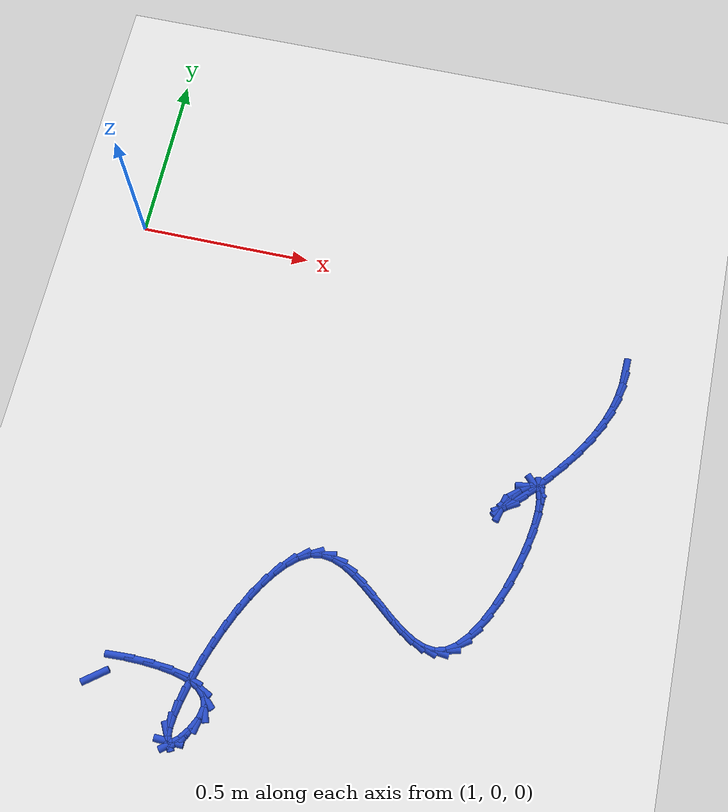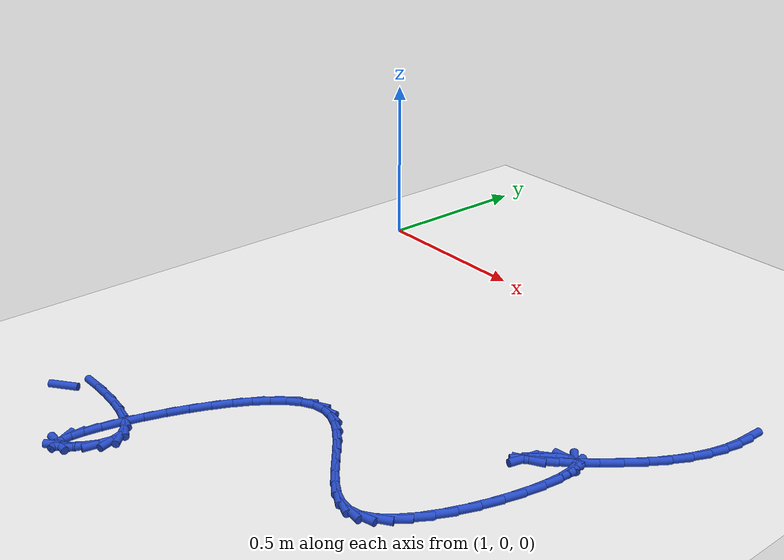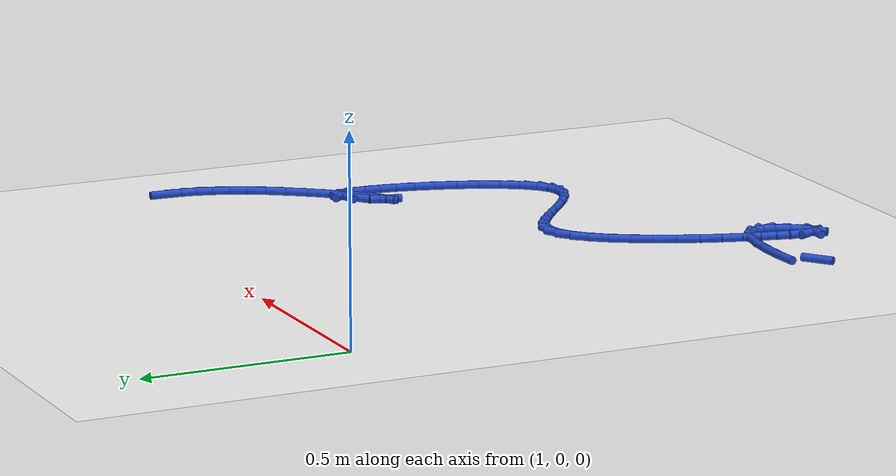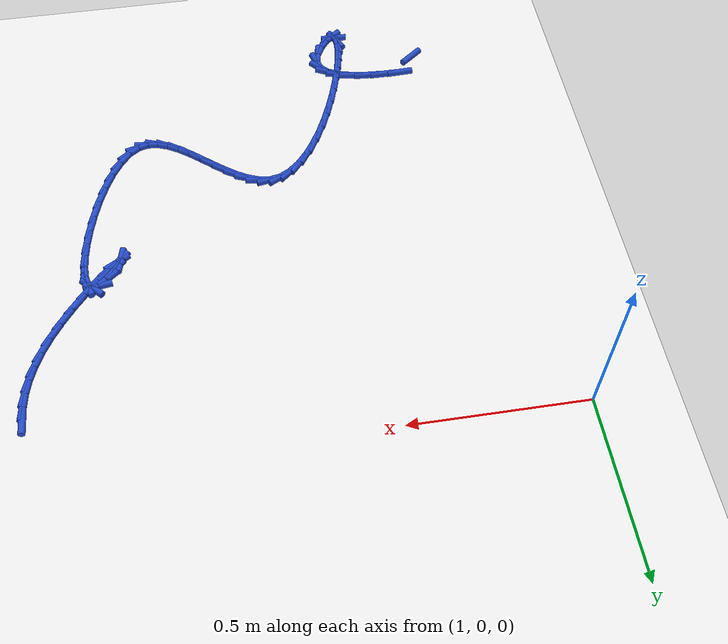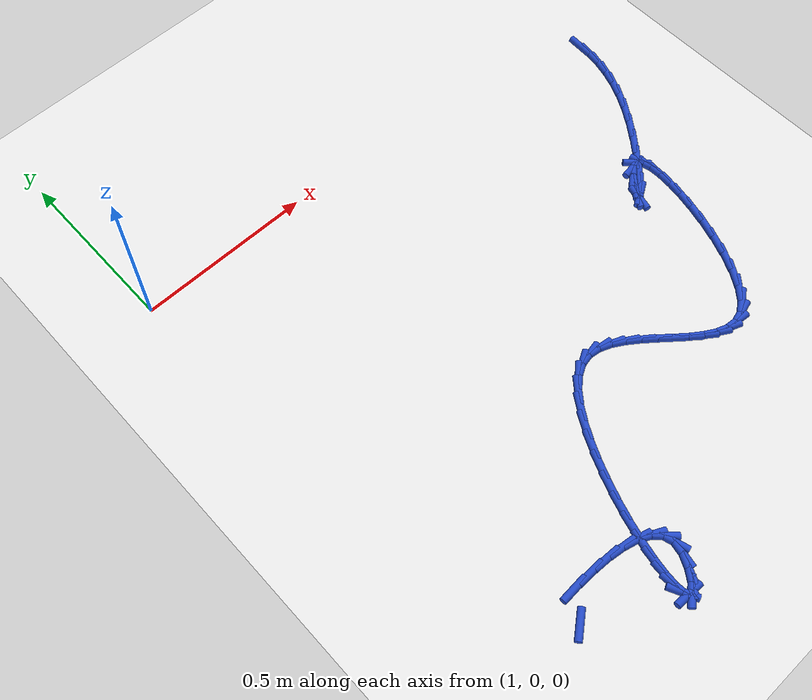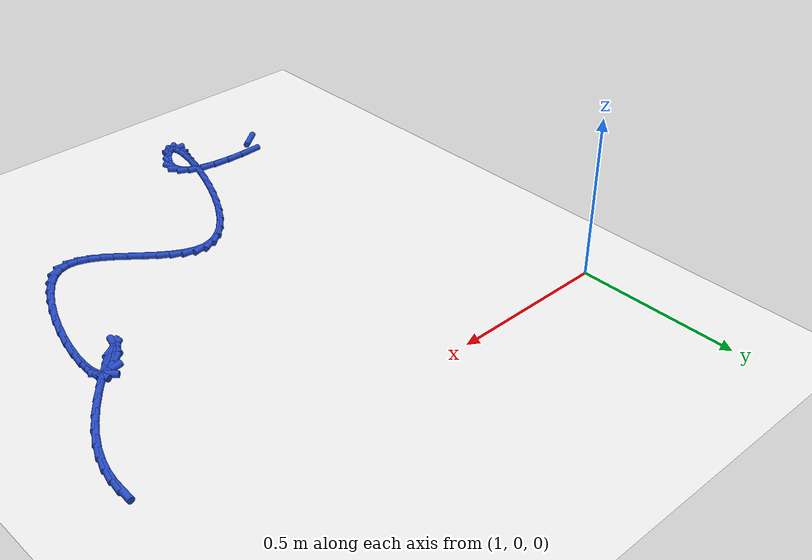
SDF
<sdf version="1.6">
 <world name="default">
  <model name="ground_plane">
   <static>1</static>
   <link name="link">
    <collision name="collision">
     <geometry><plane><normal>0 0 1</normal><size>100 100</size></plane></geometry>
     <surface><friction><ode><mu>100</mu><mu2>50</mu2></ode></friction></surface>
    </collision>
    <visual name="visual">
     <cast_shadows>0</cast_shadows>
     <geometry><plane><normal>0 0 1</normal><size>100 100</size></plane></geometry>
     <material>
      <script><uri>file://media/materials/scripts/gazebo.material</uri><name>Gazebo/WhiteGlow</name></script>
     </material>
    </visual>
   </link>
  </model>
  <model name="line">
   <link name="link_141">
    <pose>2.475047512326622 -0.15665259441816104 0.01 0 1.57 1.5263187064248123</pose>
    <collision name="collision">
     <geometry><cylinder><radius>0.01</radius><length>0.08</length></cylinder></geometry>
    </collision>
    <visual name="visual">
     <material>
      <script><name>Gazebo/Blue</name><uri>file://media/materials/scripts/gazebo.material</uri></script>
     </material>
     <geometry><cylinder><radius>0.01</radius><length>0.08</length></cylinder></geometry>
    </visual>
   </link>
   <link name="link_142">
    <pose>2.4733449842758852 -0.19490565760300038 0.01 0 1.57 1.4175095418851102</pose>
    <collision name="collision">
     <geometry><cylinder><radius>0.01</radius><length>0.08</length></cylinder></geometry>
    </collision>
    <visual name="visual">
     <material>
      <script><name>Gazebo/Blue</name><uri>file://media/materials/scripts/gazebo.material</uri></script>
     </material>
     <geometry><cylinder><radius>0.01</radius><length>0.08</length></cylinder></geometry>
    </visual>
   </link>
   <link name="link_143">
    <pose>2.467241640386339 -0.23440981804726124 0.01 0 1.57 1.3131827814348553</pose>
    <collision name="collision">
     <geometry><cylinder><radius>0.01</radius><length>0.08</length></cylinder></geometry>
    </collision>
    <visual name="visual">
     <material>
      <script><name>Gazebo/Blue</name><uri>file://media/materials/scripts/gazebo.material</uri></script>
     </material>
     <geometry><cylinder><radius>0.01</radius><length>0.08</length></cylinder></geometry>
    </visual>
   </link>
   <link name="link_144">
    <pose>2.4565036886007485 -0.27516603556299446 0.01 0 1.57 1.2150993240881174</pose>
    <collision name="collision">
     <geometry><cylinder><radius>0.01</radius><length>0.08</length></cylinder></geometry>
    </collision>
    <visual name="visual">
     <material>
      <script><name>Gazebo/Blue</name><uri>file://media/materials/scripts/gazebo.material</uri></script>
     </material>
     <geometry><cylinder><radius>0.01</radius><length>0.08</length></cylinder></geometry>
    </visual>
   </link>
   <link name="link_145">
    <pose>2.440897336861878 -0.3171752699622508 0.01 0 1.57 1.1243627041808386</pose>
    <collision name="collision">
     <geometry><cylinder><radius>0.01</radius><length>0.08</length></cylinder></geometry>
    </collision>
    <visual name="visual">
     <material>
      <script><name>Gazebo/Blue</name><uri>file://media/materials/scripts/gazebo.material</uri></script>
     </material>
     <geometry><cylinder><radius>0.01</radius><length>0.08</length></cylinder></geometry>
    </visual>
   </link>
   <link name="link_146">
    <pose>2.420188793112492 -0.36043848105708126 0.01 0 1.57 1.0414556358109461</pose>
    <collision name="collision">
     <geometry><cylinder><radius>0.01</radius><length>0.08</length></cylinder></geometry>
    </collision>
    <visual name="visual">
     <material>
      <script><name>Gazebo/Blue</name><uri>file://media/materials/scripts/gazebo.material</uri></script>
     </material>
     <geometry><cylinder><radius>0.01</radius><length>0.08</length></cylinder></geometry>
    </visual>
   </link>
   <link name="link_147">
    <pose>2.3941442652953544 -0.4049566286595365 0.01 0 1.57 0.967882478775968</pose>
    <collision name="collision">
     <geometry><cylinder><radius>0.01</radius><length>0.08</length></cylinder></geometry>
    </collision>
    <visual name="visual">
     <material>
      <script><name>Gazebo/Blue</name><uri>file://media/materials/scripts/gazebo.material</uri></script>
     </material>
     <geometry><cylinder><radius>0.01</radius><length>0.08</length></cylinder></geometry>
    </visual>
   </link>
   <link name="link_148">
    <pose>2.3627558357569285 -0.45055131193540315 0.01 0 1.57 0.911548241323808</pose>
    <collision name="collision">
     <geometry><cylinder><radius>0.01</radius><length>0.08</length></cylinder></geometry>
    </collision>
    <visual name="visual">
     <material>
      <script><name>Gazebo/Blue</name><uri>file://media/materials/scripts/gazebo.material</uri></script>
     </material>
     <geometry><cylinder><radius>0.01</radius><length>0.08</length></cylinder></geometry>
    </visual>
   </link>
   <link name="link_149">
    <pose>2.3278689219816266 -0.4955724476347228 0.01 0 1.57 0.8681431768859247</pose>
    <collision name="collision">
     <geometry><cylinder><radius>0.01</radius><length>0.08</length></cylinder></geometry>
    </collision>
    <visual name="visual">
     <material>
      <script><name>Gazebo/Blue</name><uri>file://media/materials/scripts/gazebo.material</uri></script>
     </material>
     <geometry><cylinder><radius>0.01</radius><length>0.08</length></cylinder></geometry>
    </visual>
   </link>
   <link name="link_150">
    <pose>2.292237496188603 -0.5376484942027351 0.01 0 1.57 0.8299718423669135</pose>
    <collision name="collision">
     <geometry><cylinder><radius>0.01</radius><length>0.08</length></cylinder></geometry>
    </collision>
    <visual name="visual">
     <material>
      <script><name>Gazebo/Blue</name><uri>file://media/materials/scripts/gazebo.material</uri></script>
     </material>
     <geometry><cylinder><radius>0.01</radius><length>0.08</length></cylinder></geometry>
    </visual>
   </link>
   <link name="link_151">
    <pose>2.2586217768638552 -0.5744029500961213 0.01 0 1.57 0.7891387966652418</pose>
    <collision name="collision">
     <geometry><cylinder><radius>0.01</radius><length>0.08</length></cylinder></geometry>
    </collision>
    <visual name="visual">
     <material>
      <script><name>Gazebo/Blue</name><uri>file://media/materials/scripts/gazebo.material</uri></script>
     </material>
     <geometry><cylinder><radius>0.01</radius><length>0.08</length></cylinder></geometry>
    </visual>
   </link>
   <link name="link_152">
    <pose>2.2297819824933836 -0.6034593137715615 0.01 0 1.57 0.7278260920317292</pose>
    <collision name="collision">
     <geometry><cylinder><radius>0.01</radius><length>0.08</length></cylinder></geometry>
    </collision>
    <visual name="visual">
     <material>
      <script><name>Gazebo/Blue</name><uri>file://media/materials/scripts/gazebo.material</uri></script>
     </material>
     <geometry><cylinder><radius>0.01</radius><length>0.08</length></cylinder></geometry>
    </visual>
   </link>
   <link name="link_153">
    <pose>2.2084783315631853 -0.6224410836857381 0.01 0 1.57 0.5354818273584318</pose>
    <collision name="collision">
     <geometry><cylinder><radius>0.01</radius><length>0.08</length></cylinder></geometry>
    </collision>
    <visual name="visual">
     <material>
      <script><name>Gazebo/Blue</name><uri>file://media/materials/scripts/gazebo.material</uri></script>
     </material>
     <geometry><cylinder><radius>0.01</radius><length>0.08</length></cylinder></geometry>
    </visual>
   </link>
   <link name="link_154">
    <pose>2.197471042559258 -0.6289717582953313 0.01 0 1.57 1.328648676354437</pose>
    <collision name="collision">
     <geometry><cylinder><radius>0.01</radius><length>0.08</length></cylinder></geometry>
    </collision>
    <visual name="visual">
     <material>
      <script><name>Gazebo/Blue</name><uri>file://media/materials/scripts/gazebo.material</uri></script>
     </material>
     <geometry><cylinder><radius>0.01</radius><length>0.08</length></cylinder></geometry>
    </visual>
   </link>
   <link name="link_155">
    <pose>2.199520333967601 -0.6206748360570217 0.01 0 1.57 0.960197961904093</pose>
    <collision name="collision">
     <geometry><cylinder><radius>0.01</radius><length>0.08</length></cylinder></geometry>
    </collision>
    <visual name="visual">
     <material>
      <script><name>Gazebo/Blue</name><uri>file://media/materials/scripts/gazebo.material</uri></script>
     </material>
     <geometry><cylinder><radius>0.01</radius><length>0.08</length></cylinder></geometry>
    </visual>
   </link>
   <link name="link_156">
    <pose>2.216220396651971 -0.5968111227341927 0.01 0 1.57 0.8584229246016675</pose>
    <collision name="collision">
     <geometry><cylinder><radius>0.01</radius><length>0.08</length></cylinder></geometry>
    </collision>
    <visual name="visual">
     <material>
      <script><name>Gazebo/Blue</name><uri>file://media/materials/scripts/gazebo.material</uri></script>
     </material>
     <geometry><cylinder><radius>0.01</radius><length>0.08</length></cylinder></geometry>
    </visual>
   </link>
   <link name="link_157">
    <pose>2.2409482010078223 -0.5681798429551728 0.01 0 1.57 0.6719790796865251</pose>
    <collision name="collision">
     <geometry><cylinder><radius>0.01</radius><length>0.08</length></cylinder></geometry>
    </collision>
    <visual name="visual">
     <material>
      <script><name>Gazebo/Blue</name><uri>file://media/materials/scripts/gazebo.material</uri></script>
     </material>
     <geometry><cylinder><radius>0.01</radius><length>0.08</length></cylinder></geometry>
    </visual>
   </link>
   <link name="link_158">
    <pose>2.2639250574596113 -0.5499022012439558 0.01 0 1.57 0.13818609768132062</pose>
    <collision name="collision">
     <geometry><cylinder><radius>0.01</radius><length>0.08</length></cylinder></geometry>
    </collision>
    <visual name="visual">
     <material>
      <script><name>Gazebo/Blue</name><uri>file://media/materials/scripts/gazebo.material</uri></script>
     </material>
     <geometry><cylinder><radius>0.01</radius><length>0.08</length></cylinder></geometry>
    </visual>
   </link>
   <link name="link_159">
    <pose>2.2810215201523922 -0.5475245544421465 0.01 0 1.57 -0.7936894795982131</pose>
    <collision name="collision">
     <geometry><cylinder><radius>0.01</radius><length>0.08</length></cylinder></geometry>
    </collision>
    <visual name="visual">
     <material>
      <script><name>Gazebo/Blue</name><uri>file://media/materials/scripts/gazebo.material</uri></script>
     </material>
     <geometry><cylinder><radius>0.01</radius><length>0.08</length></cylinder></geometry>
    </visual>
   </link>
   <link name="link_160">
    <pose>2.292484378838618 -0.5591790911557518 0.01 0 1.57 -1.3145777046535314</pose>
    <collision name="collision">
     <geometry><cylinder><radius>0.01</radius><length>0.08</length></cylinder></geometry>
    </collision>
    <visual name="visual">
     <material>
      <script><name>Gazebo/Blue</name><uri>file://media/materials/scripts/gazebo.material</uri></script>
     </material>
     <geometry><cylinder><radius>0.01</radius><length>0.08</length></cylinder></geometry>
    </visual>
   </link>
   <link name="link_161">
    <pose>2.298673976662515 -0.5828056191352192 0.01 0 1.57 -1.5327483947507063</pose>
    <collision name="collision">
     <geometry><cylinder><radius>0.01</radius><length>0.08</length></cylinder></geometry>
    </collision>
    <visual name="visual">
     <material>
      <script><name>Gazebo/Blue</name><uri>file://media/materials/scripts/gazebo.material</uri></script>
     </material>
     <geometry><cylinder><radius>0.01</radius><length>0.08</length></cylinder></geometry>
    </visual>
   </link>
   <link name="link_162">
    <pose>2.2999506567683037 -0.6163439461309956 0.01 0 1.57 1.491813844682639</pose>
    <collision name="collision">
     <geometry><cylinder><radius>0.01</radius><length>0.08</length></cylinder></geometry>
    </collision>
    <visual name="visual">
     <material>
      <script><name>Gazebo/Blue</name><uri>file://media/materials/scripts/gazebo.material</uri></script>
     </material>
     <geometry><cylinder><radius>0.01</radius><length>0.08</length></cylinder></geometry>
    </visual>
   </link>
   <link name="link_163">
    <pose>2.2966747623002077 -0.6577338798935284 0.01 0 1.57 1.413813161024625</pose>
    <collision name="collision">
     <geometry><cylinder><radius>0.01</radius><length>0.08</length></cylinder></geometry>
    </collision>
    <visual name="visual">
     <material>
      <script><name>Gazebo/Blue</name><uri>file://media/materials/scripts/gazebo.material</uri></script>
     </material>
     <geometry><cylinder><radius>0.01</radius><length>0.08</length></cylinder></geometry>
    </visual>
   </link>
   <link name="link_164">
    <pose>2.2892066364024513 -0.7049152281732647 0.01 0 1.57 1.3523873851237296</pose>
    <collision name="collision">
     <geometry><cylinder><radius>0.01</radius><length>0.08</length></cylinder></geometry>
    </collision>
    <visual name="visual">
     <material>
      <script><name>Gazebo/Blue</name><uri>file://media/materials/scripts/gazebo.material</uri></script>
     </material>
     <geometry><cylinder><radius>0.01</radius><length>0.08</length></cylinder></geometry>
    </visual>
   </link>
   <link name="link_165">
    <pose>2.2779066222192568 -0.7558277987206512 0.01 0 1.57 1.29693869101213</pose>
    <collision name="collision">
     <geometry><cylinder><radius>0.01</radius><length>0.08</length></cylinder></geometry>
    </collision>
    <visual name="visual">
     <material>
      <script><name>Gazebo/Blue</name><uri>file://media/materials/scripts/gazebo.material</uri></script>
     </material>
     <geometry><cylinder><radius>0.01</radius><length>0.08</length></cylinder></geometry>
    </visual>
   </link>
   <link name="link_166">
    <pose>2.2631350628948463 -0.8084113992861359 0.01 0 1.57 1.2407128516943722</pose>
    <collision name="collision">
     <geometry><cylinder><radius>0.01</radius><length>0.08</length></cylinder></geometry>
    </collision>
    <visual name="visual">
     <material>
      <script><name>Gazebo/Blue</name><uri>file://media/materials/scripts/gazebo.material</uri></script>
     </material>
     <geometry><cylinder><radius>0.01</radius><length>0.08</length></cylinder></geometry>
    </visual>
   </link>
   <link name="link_167">
    <pose>2.245252301573444 -0.8606058376201653 0.01 0 1.57 1.1776077804700003</pose>
    <collision name="collision">
     <geometry><cylinder><radius>0.01</radius><length>0.08</length></cylinder></geometry>
    </collision>
    <visual name="visual">
     <material>
      <script><name>Gazebo/Blue</name><uri>file://media/materials/scripts/gazebo.material</uri></script>
     </material>
     <geometry><cylinder><radius>0.01</radius><length>0.08</length></cylinder></geometry>
    </visual>
   </link>
   <link name="link_168">
    <pose>2.2246186813992725 -0.910350921473187 0.01 0 1.57 1.0999878803427132</pose>
    <collision name="collision">
     <geometry><cylinder><radius>0.01</radius><length>0.08</length></cylinder></geometry>
    </collision>
    <visual name="visual">
     <material>
      <script><name>Gazebo/Blue</name><uri>file://media/materials/scripts/gazebo.material</uri></script>
     </material>
     <geometry><cylinder><radius>0.01</radius><length>0.08</length></cylinder></geometry>
    </visual>
   </link>
   <link name="link_169">
    <pose>2.201594545516556 -0.9555864585956466 0.01 0 1.57 0.9958489264679008</pose>
    <collision name="collision">
     <geometry><cylinder><radius>0.01</radius><length>0.08</length></cylinder></geometry>
    </collision>
    <visual name="visual">
     <material>
      <script><name>Gazebo/Blue</name><uri>file://media/materials/scripts/gazebo.material</uri></script>
     </material>
     <geometry><cylinder><radius>0.01</radius><length>0.08</length></cylinder></geometry>
    </visual>
   </link>
   <link name="link_170">
    <pose>2.1765402370695157 -0.9942522567379943 0.01 0 1.57 0.8436782622565558</pose>
    <collision name="collision">
     <geometry><cylinder><radius>0.01</radius><length>0.08</length></cylinder></geometry>
    </collision>
    <visual name="visual">
     <material>
      <script><name>Gazebo/Blue</name><uri>file://media/materials/scripts/gazebo.material</uri></script>
     </material>
     <geometry><cylinder><radius>0.01</radius><length>0.08</length></cylinder></geometry>
    </visual>
   </link>
   <link name="link_171">
    <pose>2.1498160992023747 -1.0242881236506753 0.01 0 1.57 0.6040869255987035</pose>
    <collision name="collision">
     <geometry><cylinder><radius>0.01</radius><length>0.08</length></cylinder></geometry>
    </collision>
    <visual name="visual">
     <material>
      <script><name>Gazebo/Blue</name><uri>file://media/materials/scripts/gazebo.material</uri></script>
     </material>
     <geometry><cylinder><radius>0.01</radius><length>0.08</length></cylinder></geometry>
    </visual>
   </link>
   <link name="link_172">
    <pose>2.1217823617400793 -1.0436357042117292 0.01 0 1.57 0.25475725023032053</pose>
    <collision name="collision">
     <geometry><cylinder><radius>0.01</radius><length>0.08</length></cylinder></geometry>
    </collision>
    <visual name="visual">
     <material>
      <script><name>Gazebo/Blue</name><uri>file://media/materials/scripts/gazebo.material</uri></script>
     </material>
     <geometry><cylinder><radius>0.01</radius><length>0.08</length></cylinder></geometry>
    </visual>
   </link>
   <link name="link_173">
    <pose>2.09273990523717 -1.0511988112950128 0.01 0 1.57 -0.09271906271076642</pose>
    <collision name="collision">
     <geometry><cylinder><radius>0.01</radius><length>0.08</length></cylinder></geometry>
    </collision>
    <visual name="visual">
     <material>
      <script><name>Gazebo/Blue</name><uri>file://media/materials/scripts/gazebo.material</uri></script>
     </material>
     <geometry><cylinder><radius>0.01</radius><length>0.08</length></cylinder></geometry>
    </visual>
   </link>
   <link name="link_174">
    <pose>2.0628331422486044 -1.0484179107195843 0.01 0 1.57 -0.35237018340183923</pose>
    <collision name="collision">
     <geometry><cylinder><radius>0.01</radius><length>0.08</length></cylinder></geometry>
    </collision>
    <visual name="visual">
     <material>
      <script><name>Gazebo/Blue</name><uri>file://media/materials/scripts/gazebo.material</uri></script>
     </material>
     <geometry><cylinder><radius>0.01</radius><length>0.08</length></cylinder></geometry>
    </visual>
   </link>
   <link name="link_175">
    <pose>2.0321810020016358 -1.0371466029930405 0.01 0 1.57 -0.5199804637299611</pose>
    <collision name="collision">
     <geometry><cylinder><radius>0.01</radius><length>0.08</length></cylinder></geometry>
    </collision>
    <visual name="visual">
     <material>
      <script><name>Gazebo/Blue</name><uri>file://media/materials/scripts/gazebo.material</uri></script>
     </material>
     <geometry><cylinder><radius>0.01</radius><length>0.08</length></cylinder></geometry>
    </visual>
   </link>
   <link name="link_176">
    <pose>2.0009024137235185 -1.0192384886229788 0.01 0 1.57 -0.6199777511275151</pose>
    <collision name="collision">
     <geometry><cylinder><radius>0.01</radius><length>0.08</length></cylinder></geometry>
    </collision>
    <visual name="visual">
     <material>
      <script><name>Gazebo/Blue</name><uri>file://media/materials/scripts/gazebo.material</uri></script>
     </material>
     <geometry><cylinder><radius>0.01</radius><length>0.08</length></cylinder></geometry>
    </visual>
   </link>
   <link name="link_177">
    <pose>1.969116306641506 -0.9965471681169956 0.01 0 1.57 -0.6724848619551166</pose>
    <collision name="collision">
     <geometry><cylinder><radius>0.01</radius><length>0.08</length></cylinder></geometry>
    </collision>
    <visual name="visual">
     <material>
      <script><name>Gazebo/Blue</name><uri>file://media/materials/scripts/gazebo.material</uri></script>
     </material>
     <geometry><cylinder><radius>0.01</radius><length>0.08</length></cylinder></geometry>
    </visual>
   </link>
   <link name="link_178">
    <pose>1.936941609982852 -0.9709262419826884 0.01 0 1.57 -0.6885211003324876</pose>
    <collision name="collision">
     <geometry><cylinder><radius>0.01</radius><length>0.08</length></cylinder></geometry>
    </collision>
    <visual name="visual">
     <material>
      <script><name>Gazebo/Blue</name><uri>file://media/materials/scripts/gazebo.material</uri></script>
     </material>
     <geometry><cylinder><radius>0.01</radius><length>0.08</length></cylinder></geometry>
    </visual>
   </link>
   <link name="link_179">
    <pose>1.9044972529748108 -0.9442293107276539 0.01 0 1.57 -0.6718020232612231</pose>
    <collision name="collision">
     <geometry><cylinder><radius>0.01</radius><length>0.08</length></cylinder></geometry>
    </collision>
    <visual name="visual">
     <material>
      <script><name>Gazebo/Blue</name><uri>file://media/materials/scripts/gazebo.material</uri></script>
     </material>
     <geometry><cylinder><radius>0.01</radius><length>0.08</length></cylinder></geometry>
    </visual>
   </link>
   <link name="link_180">
    <pose>1.8719021648446352 -0.9183099748594893 0.01 0 1.57 -0.6199088234263623</pose>
    <collision name="collision">
     <geometry><cylinder><radius>0.01</radius><length>0.08</length></cylinder></geometry>
    </collision>
    <visual name="visual">
     <material>
      <script><name>Gazebo/Blue</name><uri>file://media/materials/scripts/gazebo.material</uri></script>
     </material>
     <geometry><cylinder><radius>0.01</radius><length>0.08</length></cylinder></geometry>
    </visual>
   </link>
   <link name="link_181">
    <pose>1.8392752748195793 -0.8950218348857913 0.01 0 1.57 -0.5239790610435876</pose>
    <collision name="collision">
     <geometry><cylinder><radius>0.01</radius><length>0.08</length></cylinder></geometry>
    </collision>
    <visual name="visual">
     <material>
      <script><name>Gazebo/Blue</name><uri>file://media/materials/scripts/gazebo.material</uri></script>
     </material>
     <geometry><cylinder><radius>0.01</radius><length>0.08</length></cylinder></geometry>
    </visual>
   </link>
   <link name="link_182">
    <pose>1.8067355121268978 -0.8762184913141577 0.01 0 1.57 -0.3679523810284989</pose>
    <collision name="collision">
     <geometry><cylinder><radius>0.01</radius><length>0.08</length></cylinder></geometry>
    </collision>
    <visual name="visual">
     <material>
      <script><name>Gazebo/Blue</name><uri>file://media/materials/scripts/gazebo.material</uri></script>
     </material>
     <geometry><cylinder><radius>0.01</radius><length>0.08</length></cylinder></geometry>
    </visual>
   </link>
   <link name="link_183">
    <pose>1.7744018059938425 -0.8637535446521845 0.01 0 1.57 -0.13270868727699264</pose>
    <collision name="collision">
     <geometry><cylinder><radius>0.01</radius><length>0.08</length></cylinder></geometry>
    </collision>
    <visual name="visual">
     <material>
      <script><name>Gazebo/Blue</name><uri>file://media/materials/scripts/gazebo.material</uri></script>
     </material>
     <geometry><cylinder><radius>0.01</radius><length>0.08</length></cylinder></geometry>
    </visual>
   </link>
   <link name="link_184">
    <pose>1.74239308564767 -0.8594805954074693 0.01 0 1.57 0.18063107409196322</pose>
    <collision name="collision">
     <geometry><cylinder><radius>0.01</radius><length>0.08</length></cylinder></geometry>
    </collision>
    <visual name="visual">
     <material>
      <script><name>Gazebo/Blue</name><uri>file://media/materials/scripts/gazebo.material</uri></script>
     </material>
     <geometry><cylinder><radius>0.01</radius><length>0.08</length></cylinder></geometry>
    </visual>
   </link>
   <link name="link_185">
    <pose>1.7108286564025128 -0.8652449411837729 0.01 0 1.57 0.49211518259531384</pose>
    <collision name="collision">
     <geometry><cylinder><radius>0.01</radius><length>0.08</length></cylinder></geometry>
    </collision>
    <visual name="visual">
     <material>
      <script><name>Gazebo/Blue</name><uri>file://media/materials/scripts/gazebo.material</uri></script>
     </material>
     <geometry><cylinder><radius>0.01</radius><length>0.08</length></cylinder></geometry>
    </visual>
   </link>
   <link name="link_186">
    <pose>1.67987550656244 -0.8818391779379383 0.01 0 1.57 0.7155238088906325</pose>
    <collision name="collision">
     <geometry><cylinder><radius>0.01</radius><length>0.08</length></cylinder></geometry>
    </collision>
    <visual name="visual">
     <material>
      <script><name>Gazebo/Blue</name><uri>file://media/materials/scripts/gazebo.material</uri></script>
     </material>
     <geometry><cylinder><radius>0.01</radius><length>0.08</length></cylinder></geometry>
    </visual>
   </link>
   <link name="link_187">
    <pose>1.6497944262245219 -0.9079850310266593 0.01 0 1.57 0.8682357072833168</pose>
    <collision name="collision">
     <geometry><cylinder><radius>0.01</radius><length>0.08</length></cylinder></geometry>
    </collision>
    <visual name="visual">
     <material>
      <script><name>Gazebo/Blue</name><uri>file://media/materials/scripts/gazebo.material</uri></script>
     </material>
     <geometry><cylinder><radius>0.01</radius><length>0.08</length></cylinder></geometry>
    </visual>
   </link>
   <link name="link_188">
    <pose>1.6208571512895356 -0.9421625743161248 0.01 0 1.57 0.9760941629733704</pose>
    <collision name="collision">
     <geometry><cylinder><radius>0.01</radius><length>0.08</length></cylinder></geometry>
    </collision>
    <visual name="visual">
     <material>
      <script><name>Gazebo/Blue</name><uri>file://media/materials/scripts/gazebo.material</uri></script>
     </material>
     <geometry><cylinder><radius>0.01</radius><length>0.08</length></cylinder></geometry>
    </visual>
   </link>
   <link name="link_189">
    <pose>1.5933354176582561 -0.982851881672524 0.01 0 1.57 1.0561015189144636</pose>
    <collision name="collision">
     <geometry><cylinder><radius>0.01</radius><length>0.08</length></cylinder></geometry>
    </collision>
    <visual name="visual">
     <material>
      <script><name>Gazebo/Blue</name><uri>file://media/materials/scripts/gazebo.material</uri></script>
     </material>
     <geometry><cylinder><radius>0.01</radius><length>0.08</length></cylinder></geometry>
    </visual>
   </link>
   <link name="link_190">
    <pose>1.5675009612314617 -1.0285330269620458 0.01 0 1.57 1.118624335910328</pose>
    <collision name="collision">
     <geometry><cylinder><radius>0.01</radius><length>0.08</length></cylinder></geometry>
    </collision>
    <visual name="visual">
     <material>
      <script><name>Gazebo/Blue</name><uri>file://media/materials/scripts/gazebo.material</uri></script>
     </material>
     <geometry><cylinder><radius>0.01</radius><length>0.08</length></cylinder></geometry>
    </visual>
   </link>
   <link name="link_191">
    <pose>1.5436255179099287 -1.0776860840508804 0.01 0 1.57 1.1701685284105456</pose>
    <collision name="collision">
     <geometry><cylinder><radius>0.01</radius><length>0.08</length></cylinder></geometry>
    </collision>
    <visual name="visual">
     <material>
      <script><name>Gazebo/Blue</name><uri>file://media/materials/scripts/gazebo.material</uri></script>
     </material>
     <geometry><cylinder><radius>0.01</radius><length>0.08</length></cylinder></geometry>
    </visual>
   </link>
   <link name="link_192">
    <pose>1.5219808235944337 -1.1287911268052155 0.01 0 1.57 1.2151628785748596</pose>
    <collision name="collision">
     <geometry><cylinder><radius>0.01</radius><length>0.08</length></cylinder></geometry>
    </collision>
    <visual name="visual">
     <material>
      <script><name>Gazebo/Blue</name><uri>file://media/materials/scripts/gazebo.material</uri></script>
     </material>
     <geometry><cylinder><radius>0.01</radius><length>0.08</length></cylinder></geometry>
    </visual>
   </link>
   <link name="link_193">
    <pose>1.5028386141857535 -1.180328229091241 0.01 0 1.57 1.2570667332606236</pose>
    <collision name="collision">
     <geometry><cylinder><radius>0.01</radius><length>0.08</length></cylinder></geometry>
    </collision>
    <visual name="visual">
     <material>
      <script><name>Gazebo/Blue</name><uri>file://media/materials/scripts/gazebo.material</uri></script>
     </material>
     <geometry><cylinder><radius>0.01</radius><length>0.08</length></cylinder></geometry>
    </visual>
   </link>
   <link name="link_194">
    <pose>1.4864706255846643 -1.2307774647751457 0.01 0 1.57 1.2992142241211215</pose>
    <collision name="collision">
     <geometry><cylinder><radius>0.01</radius><length>0.08</length></cylinder></geometry>
    </collision>
    <visual name="visual">
     <material>
      <script><name>Gazebo/Blue</name><uri>file://media/materials/scripts/gazebo.material</uri></script>
     </material>
     <geometry><cylinder><radius>0.01</radius><length>0.08</length></cylinder></geometry>
    </visual>
   </link>
   <link name="link_195">
    <pose>1.4731485936919435 -1.2786189077231194 0.01 0 1.57 1.3458105756760235</pose>
    <collision name="collision">
     <geometry><cylinder><radius>0.01</radius><length>0.08</length></cylinder></geometry>
    </collision>
    <visual name="visual">
     <material>
      <script><name>Gazebo/Blue</name><uri>file://media/materials/scripts/gazebo.material</uri></script>
     </material>
     <geometry><cylinder><radius>0.01</radius><length>0.08</length></cylinder></geometry>
    </visual>
   </link>
   <link name="link_196">
    <pose>1.4631442544083673 -1.322332631801351 0.01 0 1.57 1.4038445634352505</pose>
    <collision name="collision">
     <geometry><cylinder><radius>0.01</radius><length>0.08</length></cylinder></geometry>
    </collision>
    <visual name="visual">
     <material>
      <script><name>Gazebo/Blue</name><uri>file://media/materials/scripts/gazebo.material</uri></script>
     </material>
     <geometry><cylinder><radius>0.01</radius><length>0.08</length></cylinder></geometry>
    </visual>
   </link>
   <link name="link_197">
    <pose>1.4567293436347126 -1.3603987108760294 0.01 0 1.57 1.48833424626187</pose>
    <collision name="collision">
     <geometry><cylinder><radius>0.01</radius><length>0.08</length></cylinder></geometry>
    </collision>
    <visual name="visual">
     <material>
      <script><name>Gazebo/Blue</name><uri>file://media/materials/scripts/gazebo.material</uri></script>
     </material>
     <geometry><cylinder><radius>0.01</radius><length>0.08</length></cylinder></geometry>
    </visual>
   </link>
   <link name="link_198">
    <pose>1.4541755972717563 -1.3912972188133437 0.01 0 1.57 -1.4998179641631728</pose>
    <collision name="collision">
     <geometry><cylinder><radius>0.01</radius><length>0.08</length></cylinder></geometry>
    </collision>
    <visual name="visual">
     <material>
      <script><name>Gazebo/Blue</name><uri>file://media/materials/scripts/gazebo.material</uri></script>
     </material>
     <geometry><cylinder><radius>0.01</radius><length>0.08</length></cylinder></geometry>
    </visual>
   </link>
   <link name="link_199">
    <pose>1.4557547512202746 -1.4135082294794832 0.01 0 1.57 -1.1083493101289343</pose>
    <collision name="collision">
     <geometry><cylinder><radius>0.01</radius><length>0.08</length></cylinder></geometry>
    </collision>
    <visual name="visual">
     <material>
      <script><name>Gazebo/Blue</name><uri>file://media/materials/scripts/gazebo.material</uri></script>
     </material>
     <geometry><cylinder><radius>0.01</radius><length>0.08</length></cylinder></geometry>
    </visual>
   </link>
   <link name="link_200">
    <pose>1.4617385413810449 -1.425511816740637 0.01 0 1.57 -0.025907290156238702</pose>
    <collision name="collision">
     <geometry><cylinder><radius>0.01</radius><length>0.08</length></cylinder></geometry>
    </collision>
    <visual name="visual">
     <material>
      <script><name>Gazebo/Blue</name><uri>file://media/materials/scripts/gazebo.material</uri></script>
     </material>
     <geometry><cylinder><radius>0.01</radius><length>0.08</length></cylinder></geometry>
    </visual>
   </link>
   <link name="link_201">
    <pose>1.4723987036548425 -1.4257880544629948 0.01 0 1.57 0.6933810706808033</pose>
    <collision name="collision">
     <geometry><cylinder><radius>0.01</radius><length>0.08</length></cylinder></geometry>
    </collision>
    <visual name="visual">
     <material>
      <script><name>Gazebo/Blue</name><uri>file://media/materials/scripts/gazebo.material</uri></script>
     </material>
     <geometry><cylinder><radius>0.01</radius><length>0.08</length></cylinder></geometry>
    </visual>
   </link>
   <link name="link_202">
    <pose>1.4880069739424457 -1.4128170165127454 0.01 0 1.57 0.9304768312458428</pose>
    <collision name="collision">
     <geometry><cylinder><radius>0.01</radius><length>0.08</length></cylinder></geometry>
    </collision>
    <visual name="visual">
     <material>
      <script><name>Gazebo/Blue</name><uri>file://media/materials/scripts/gazebo.material</uri></script>
     </material>
     <geometry><cylinder><radius>0.01</radius><length>0.08</length></cylinder></geometry>
    </visual>
   </link>
   <link name="link_203">
    <pose>1.5075562412132812 -1.3865778173805385 0.01 0 1.57 1.0967013758564585</pose>
    <collision name="collision">
     <geometry><cylinder><radius>0.01</radius><length>0.08</length></cylinder></geometry>
    </collision>
    <visual name="visual">
     <material>
      <script><name>Gazebo/Blue</name><uri>file://media/materials/scripts/gazebo.material</uri></script>
     </material>
     <geometry><cylinder><radius>0.01</radius><length>0.08</length></cylinder></geometry>
    </visual>
   </link>
   <link name="link_204">
    <pose>1.5245187407378888 -1.3535207793031159 0.01 0 1.57 1.3702350700100754</pose>
    <collision name="collision">
     <geometry><cylinder><radius>0.01</radius><length>0.08</length></cylinder></geometry>
    </collision>
    <visual name="visual">
     <material>
      <script><name>Gazebo/Blue</name><uri>file://media/materials/scripts/gazebo.material</uri></script>
     </material>
     <geometry><cylinder><radius>0.01</radius><length>0.08</length></cylinder></geometry>
    </visual>
   </link>
   <link name="link_205">
    <pose>1.530976456025843 -1.3217554448897035 0.01 0 1.57 -1.275470396693176</pose>
    <collision name="collision">
     <geometry><cylinder><radius>0.01</radius><length>0.08</length></cylinder></geometry>
    </collision>
    <visual name="visual">
     <material>
      <script><name>Gazebo/Blue</name><uri>file://media/materials/scripts/gazebo.material</uri></script>
     </material>
     <geometry><cylinder><radius>0.01</radius><length>0.08</length></cylinder></geometry>
    </visual>
   </link>
   <link name="link_206">
    <pose>1.5230890308344123 -1.2958289243378183 0.01 0 1.57 -0.7766620223025922</pose>
    <collision name="collision">
     <geometry><cylinder><radius>0.01</radius><length>0.08</length></cylinder></geometry>
    </collision>
    <visual name="visual">
     <material>
      <script><name>Gazebo/Blue</name><uri>file://media/materials/scripts/gazebo.material</uri></script>
     </material>
     <geometry><cylinder><radius>0.01</radius><length>0.08</length></cylinder></geometry>
    </visual>
   </link>
   <link name="link_207">
    <pose>1.5024465685312693 -1.2755440183946158 0.01 0 1.57 -0.449659118985526</pose>
    <collision name="collision">
     <geometry><cylinder><radius>0.01</radius><length>0.08</length></cylinder></geometry>
    </collision>
    <visual name="visual">
     <material>
      <script><name>Gazebo/Blue</name><uri>file://media/materials/scripts/gazebo.material</uri></script>
     </material>
     <geometry><cylinder><radius>0.01</radius><length>0.08</length></cylinder></geometry>
    </visual>
   </link>
   <link name="link_208">
    <pose>1.4710158364977537 -1.2603744560954915 0.01 0 1.57 -0.25704015060890384</pose>
    <collision name="collision">
     <geometry><cylinder><radius>0.01</radius><length>0.08</length></cylinder></geometry>
    </collision>
    <visual name="visual">
     <material>
      <script><name>Gazebo/Blue</name><uri>file://media/materials/scripts/gazebo.material</uri></script>
     </material>
     <geometry><cylinder><radius>0.01</radius><length>0.08</length></cylinder></geometry>
    </visual>
   </link>
   <link name="link_209">
    <pose>1.430763602115204 -1.2497939664758406 0.01 0 1.57 -0.1374864323247558</pose>
    <collision name="collision">
     <geometry><cylinder><radius>0.01</radius><length>0.08</length></cylinder></geometry>
    </collision>
    <visual name="visual">
     <material>
      <script><name>Gazebo/Blue</name><uri>file://media/materials/scripts/gazebo.material</uri></script>
     </material>
     <geometry><cylinder><radius>0.01</radius><length>0.08</length></cylinder></geometry>
    </visual>
   </link>
   <link name="link_210">
    <pose>1.3836566327649593 -1.243276278571059 0.01 0 1.57 -0.05727282391719798</pose>
    <collision name="collision">
     <geometry><cylinder><radius>0.01</radius><length>0.08</length></cylinder></geometry>
    </collision>
    <visual name="visual">
     <material>
      <script><name>Gazebo/Blue</name><uri>file://media/materials/scripts/gazebo.material</uri></script>
     </material>
     <geometry><cylinder><radius>0.01</radius><length>0.08</length></cylinder></geometry>
    </visual>
   </link>
   <link name="link_211">
    <pose>1.3316616958283605 -1.2402951214165414 0.01 0 1.57 0.0005299467502997238</pose>
    <collision name="collision">
     <geometry><cylinder><radius>0.01</radius><length>0.08</length></cylinder></geometry>
    </collision>
    <visual name="visual">
     <material>
      <script><name>Gazebo/Blue</name><uri>file://media/materials/scripts/gazebo.material</uri></script>
     </material>
     <geometry><cylinder><radius>0.01</radius><length>0.08</length></cylinder></geometry>
    </visual>
   </link>
   <link name="link_212">
    <pose>1.2767455586867449 -1.240324224047683 0.01 0 1.57 0.044950295554038185</pose>
    <collision name="collision">
     <geometry><cylinder><radius>0.01</radius><length>0.08</length></cylinder></geometry>
    </collision>
    <visual name="visual">
     <material>
      <script><name>Gazebo/Blue</name><uri>file://media/materials/scripts/gazebo.material</uri></script>
     </material>
     <geometry><cylinder><radius>0.01</radius><length>0.08</length></cylinder></geometry>
    </visual>
   </link>
   <link name="link_230">
    <pose>1.2271698730313516 -1.3037479939221444 0.01 0 1.57 0.6520626826155759</pose>
    <collision name="collision">
     <geometry><cylinder><radius>0.01</radius><length>0.08</length></cylinder></geometry>
    </collision>
    <visual name="visual">
     <material>
      <script><name>Gazebo/Blue</name><uri>file://media/materials/scripts/gazebo.material</uri></script>
     </material>
     <geometry><cylinder><radius>0.01</radius><length>0.08</length></cylinder></geometry>
    </visual>
   </link>
  </model>
 </world>
</sdf>
